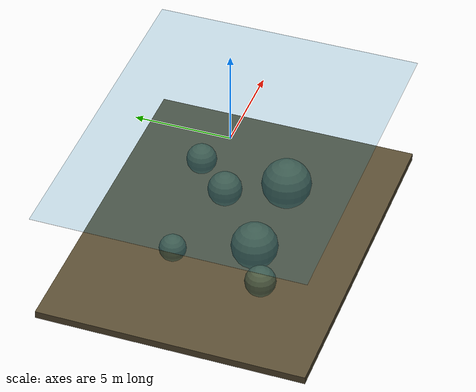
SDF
<?xml version='1.0' encoding='utf-8'?>
<sdf version="1.7">
  <world name="marine_reef">
    <physics name="marine_physics" type="ode">
      <max_step_size>0.001</max_step_size>
      <real_time_factor>1</real_time_factor>
    </physics>
    <gravity>0 0 -9.81</gravity>
    <plugin filename="ignition-gazebo-physics-system" name="ignition::gazebo::systems::Physics" />
    <plugin filename="ignition-gazebo-user-commands-system" name="ignition::gazebo::systems::UserCommands" />
    <plugin filename="ignition-gazebo-scene-broadcaster-system" name="ignition::gazebo::systems::SceneBroadcaster" />
    <plugin filename="ignition-gazebo-sensors-system" name="ignition::gazebo::systems::Sensors">
      <render_engine>ogre2</render_engine>
    </plugin>
    <plugin filename="ignition-gazebo-imu-system" name="ignition::gazebo::systems::Imu" />
    <plugin filename="ignition-gazebo-buoyancy-system" name="ignition::gazebo::systems::Buoyancy">
      <graded_buoyancy>
        <default_density>1025</default_density>
        <density_change>
          <above_depth>0</above_depth>
          <density>1.225</density>
        </density_change>
      </graded_buoyancy>
      <enable>lab_rov</enable>
    </plugin>
    <!-- Fortress uses the explicit marine_sensors.py DVL/pressure/sonar model. -->
    <scene>
      <ambient>.3 .55 .6 1</ambient>
      <background>.05 .18 .25 1</background>
    </scene>
    <light name="sun" type="directional">
      <pose>0 0 10 0 0 0</pose>
      <diffuse>.8 .9 1 1</diffuse>
      <direction>-.3 .2 -1</direction>
    </light>
    <model name="seafloor">
      <static>true</static>
      <pose>0 0 -6.2 0 0 0</pose>
      <link name="link">
        <visual name="visual">
          <geometry>
            <box>
              <size>18 14 0.4</size>
            </box>
          </geometry>
          <material>
            <ambient>.35 .3 .2 1</ambient>
            <diffuse>.35 .3 .2 1</diffuse>
          </material>
        </visual>
        <collision name="collision">
          <geometry>
            <box>
              <size>18 14 0.4</size>
            </box>
          </geometry>
        </collision>
      </link>
    </model>
    <model name="water_surface">
      <static>true</static>
      <pose>0 0 0 0 0 0</pose>
      <link name="link">
        <visual name="visual">
          <geometry>
            <box>
              <size>18 14 0.015</size>
            </box>
          </geometry>
          <material>
            <ambient>0 .4 .6 .18</ambient>
            <diffuse>0 .4 .6 .18</diffuse>
          </material>
        </visual>
      </link>
    </model>
    <model name="reef_rock_0">
      <static>true</static>
      <pose>2 1 -5.1 0 0 0</pose>
      <link name="link">
        <visual name="visual">
          <geometry>
            <sphere>
              <radius>0.9</radius>
            </sphere>
          </geometry>
          <material>
            <ambient>.3 .35 .25 1</ambient>
            <diffuse>.3 .35 .25 1</diffuse>
          </material>
        </visual>
        <collision name="collision">
          <geometry>
            <sphere>
              <radius>0.9</radius>
            </sphere>
          </geometry>
        </collision>
      </link>
    </model>
    <model name="reef_rock_1">
      <static>true</static>
      <pose>3 -2 -4.7 0 0 0</pose>
      <link name="link">
        <visual name="visual">
          <geometry>
            <sphere>
              <radius>1.3</radius>
            </sphere>
          </geometry>
          <material>
            <ambient>.3 .35 .25 1</ambient>
            <diffuse>.3 .35 .25 1</diffuse>
          </material>
        </visual>
        <collision name="collision">
          <geometry>
            <sphere>
              <radius>1.3</radius>
            </sphere>
          </geometry>
        </collision>
      </link>
    </model>
    <model name="reef_rock_2">
      <static>true</static>
      <pose>-3 2 -5.3 0 0 0</pose>
      <link name="link">
        <visual name="visual">
          <geometry>
            <sphere>
              <radius>0.7</radius>
            </sphere>
          </geometry>
          <material>
            <ambient>.3 .35 .25 1</ambient>
            <diffuse>.3 .35 .25 1</diffuse>
          </material>
        </visual>
        <collision name="collision">
          <geometry>
            <sphere>
              <radius>0.7</radius>
            </sphere>
          </geometry>
        </collision>
      </link>
    </model>
    <model name="reef_rock_3">
      <static>true</static>
      <pose>-2 -2 -4.8 0 0 0</pose>
      <link name="link">
        <visual name="visual">
          <geometry>
            <sphere>
              <radius>1.2</radius>
            </sphere>
          </geometry>
          <material>
            <ambient>.3 .35 .25 1</ambient>
            <diffuse>.3 .35 .25 1</diffuse>
          </material>
        </visual>
        <collision name="collision">
          <geometry>
            <sphere>
              <radius>1.2</radius>
            </sphere>
          </geometry>
        </collision>
      </link>
    </model>
    <model name="reef_rock_4">
      <static>true</static>
      <pose>4 3 -5.2 0 0 0</pose>
      <link name="link">
        <visual name="visual">
          <geometry>
            <sphere>
              <radius>0.8</radius>
            </sphere>
          </geometry>
          <material>
            <ambient>.3 .35 .25 1</ambient>
            <diffuse>.3 .35 .25 1</diffuse>
          </material>
        </visual>
        <collision name="collision">
          <geometry>
            <sphere>
              <radius>0.8</radius>
            </sphere>
          </geometry>
        </collision>
      </link>
    </model>
    <model name="reef_rock_5">
      <static>true</static>
      <pose>-4 -3 -5.2 0 0 0</pose>
      <link name="link">
        <visual name="visual">
          <geometry>
            <sphere>
              <radius>0.8</radius>
            </sphere>
          </geometry>
          <material>
            <ambient>.3 .35 .25 1</ambient>
            <diffuse>.3 .35 .25 1</diffuse>
          </material>
        </visual>
        <collision name="collision">
          <geometry>
            <sphere>
              <radius>0.8</radius>
            </sphere>
          </geometry>
        </collision>
      </link>
    </model>
  </world>
</sdf>
